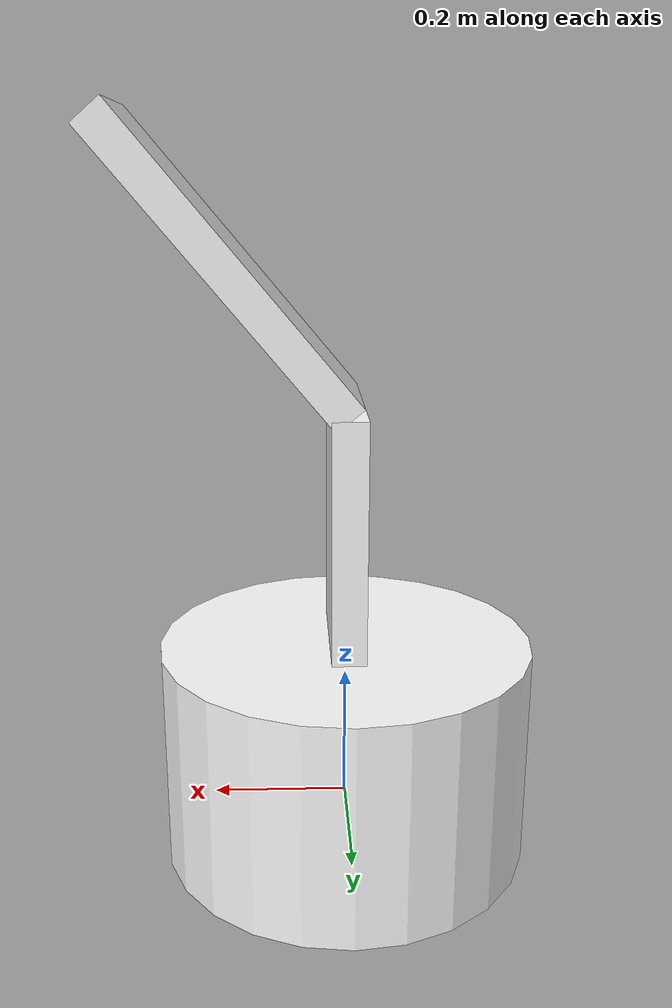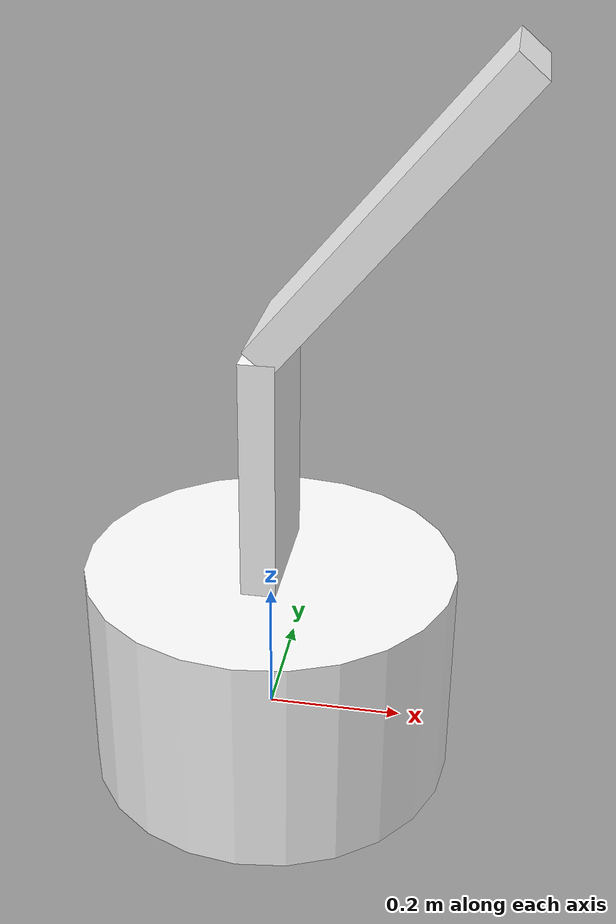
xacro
<?xml version="1.0"?>
<robot xmlns:xacro="http://www.ros.org/wiki/xacro" >

    <xacro:include filename="inertial_macros.xacro"/>
    <xacro:include filename="ros2_control.xacro"/>

    <material name="white">
        <color rgba="1 1 1 1"/>
    </material>
    <material name="blue">
        <color rgba="0.2 0.2 1 1"/>
    </material>
    <material name="black">
        <color rgba="0 0 0 1"/>
    </material>
    <material name="red">
        <color rgba="1 0 0 1"/>
    </material>
    <material name="grey">
        <color rgba="0.5 0.5 0.5 1"/>
    </material>

    <!--BASE LINK-->
    <link name="base_link">
    </link>

    <!--BASE FOOTPRINT LINK-->
    <joint name="base_footprint_joint" type="fixed">
        <parent link="base_link"/>
        <child link="base_footprint"/>
        <origin xyz="0 0 0" rpy="0 0 0"/>
    </joint>

    <link name="base_footprint">
    </link>

    <!--CHASSI-->
    <joint name="chassi_joint" type="fixed">
        <parent link="base_link"/>
        <child link="chassi_link"/>
        <origin xyz="0 0 0"/> <!--VIRADO PARA X-->
    </joint>

    <link name="chassi_link">
        <visual>
            <origin xyz="0 0 0.085"/>
            <geometry>
                <cylinder radius="0.275" length="0.334"/>
            </geometry>
            <material name="white"/>
        </visual>
        <collision>
            <origin xyz="0 0 0.085"/>
            <geometry>
                <cylinder radius="0.275" length="0.17"/>
            </geometry>
        </collision>
        <xacro:inertial_cylinder mass="1.0" length="0.17" radius="0.275">
            <origin xyz="0 0 0.085" rpy="0 0 0"/>
        </xacro:inertial_cylinder>
    </link>

    <gazebo reference="chassi_link">
        <material>Gazebo/White</material>
    </gazebo>

    <!--LOWER BODY-->
    <joint name="lower_body_joint" type="prismatic">
        <parent link="base_link"/>
        <child link="lower_body_link"/>
        <origin xyz="0 0 0.25" rpy="0 0 0"/>
        <axis xyz="0 0 1"/>
        <limit lower="0" upper="0.14" velocity="100" effort="100"/>
    </joint>

    <link name="lower_body_link">
        <visual>
            <origin xyz="0 0 0.18" rpy="0 0 ${pi/2}"/>
            <geometry>
                <box size="0.2 0.05 0.35"/>
            </geometry>
            <material name="white"/>
        </visual>
        <collision>
            <origin xyz="0 0 0.18" rpy="0 0 ${pi/2}"/>
            <geometry>
                <box size="0.2 0.05 0.35"/>
            </geometry>
        </collision>
        <xacro:inertial_box mass="0.1" x="0.2" y="0.05" z="0.35">
            <origin xyz="0 0 0.18" rpy="0 0 0"/>
        </xacro:inertial_box>
    </link>

    <gazebo reference="lower_body_link">
        <material>Gazebo/White</material>
        <turnGravityOff>true</turnGravityOff>
    </gazebo>

    <!--UPPER BODY-->
    <joint name="upper_body_joint" type="revolute">
        <parent link="lower_body_link"/>
        <child link="upper_body_link"/>
        <origin xyz="0 0 0.355" rpy="0 0 0"/>
        <axis xyz="0 1 0"/>
        <limit lower="0.1745" upper="1.2217" velocity="100" effort="100"/>
    </joint>

    <link name="upper_body_link">
        <visual>
            <origin xyz="0 0 0.25" rpy="0 0 ${pi/2}"/>
            <geometry>
                <box size="0.2 0.05 0.50"/>
            </geometry>
            <material name="white"/>
        </visual>
        <collision>
            <origin xyz="0 0 0.25" rpy="0 0 ${pi/2}"/>
            <geometry>
                <box size="0.2 0.05 0.50"/>
            </geometry>
        </collision>
        <xacro:inertial_box mass="0.03" x="0.2" y="0.05" z="0.50">
            <origin xyz="0 0 0.25" rpy="0 0 0"/>
        </xacro:inertial_box>
    </link>

    <gazebo reference="upper_body_link">
        <material>Gazebo/White</material>
        <turnGravityOff>true</turnGravityOff>
    </gazebo>

    <xacro:ros2_control_gazebo/>

</robot>
